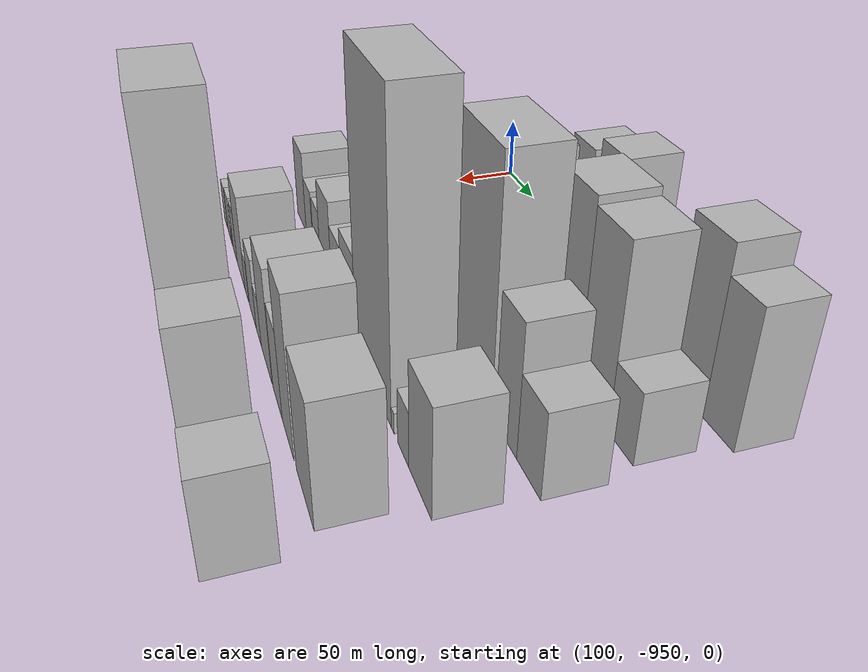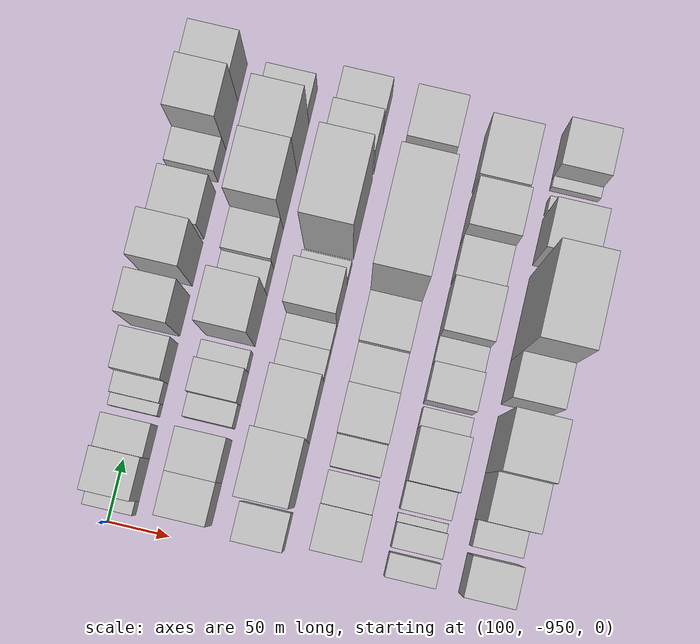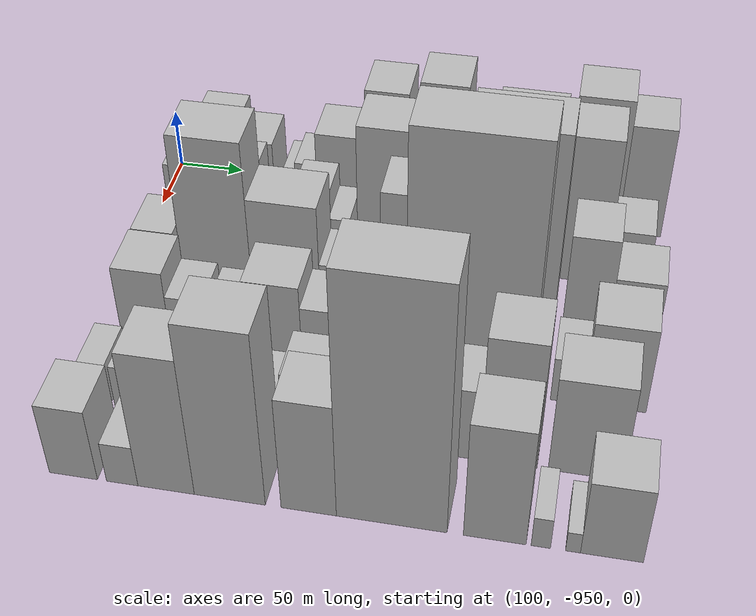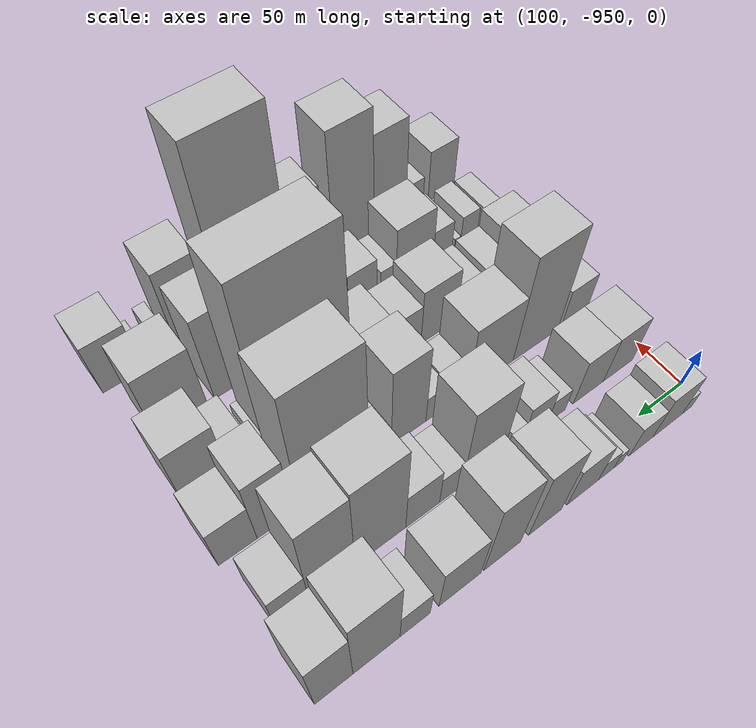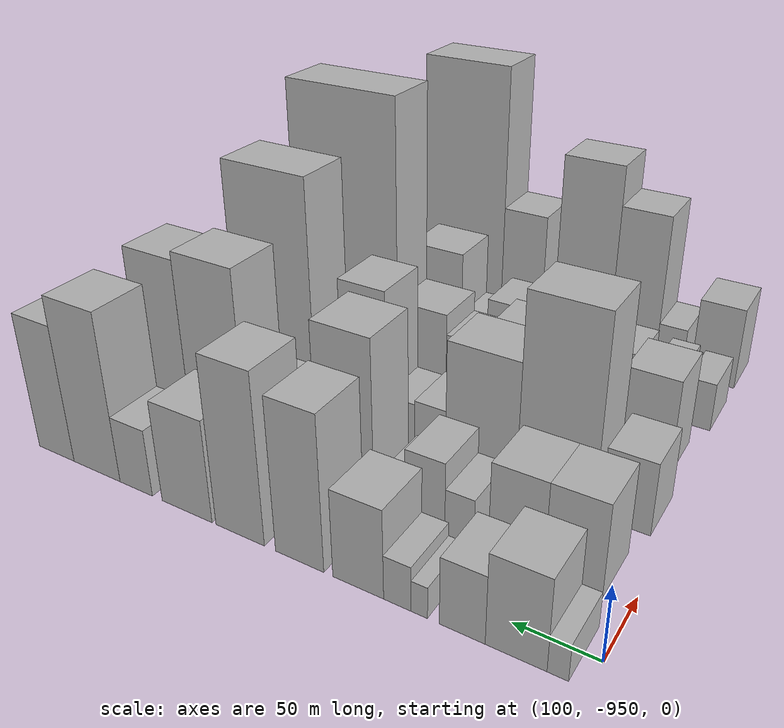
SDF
<sdf version="1.6">
 <world name="default">
  <model name="building_1">
   <static>1</static>
   <pose>100.0000 -934.3074 0 0.000000 0.000000 0.000000</pose>
   <link name="link">
    <pose>0 0 12.00 0 0 0</pose>
    <collision name="collision"><geometry><box><size>40.0000 11.3851 24.0000</size></box></geometry></collision>
    <visual name="visual">
     <cast_shadows>0</cast_shadows>
     <geometry><box><size>40.0000 11.3851 24.0000</size></box></geometry>
     <material>
      <script>
       <uri>model://HANNAS_wall/materials/scripts</uri>
       <uri>model://HANNAS_wall/materials/textures</uri>
       <name>vrc/HANNAS_wall</name>
      </script>
     </material>
    </visual>
   </link>
  </model>
  <model name="building_2">
   <static>1</static>
   <pose>100.0000 -911.6488 0 0.000000 0.000000 0.000000</pose>
   <link name="link">
    <pose>0 0 30.00 0 0 0</pose>
    <collision name="collision"><geometry><box><size>40.0000 33.9323 60.0000</size></box></geometry></collision>
    <visual name="visual">
     <cast_shadows>0</cast_shadows>
     <geometry><box><size>40.0000 33.9323 60.0000</size></box></geometry>
     <material>
      <script>
       <uri>model://HANNAS_wall/materials/scripts</uri>
       <uri>model://HANNAS_wall/materials/textures</uri>
       <name>vrc/HANNAS_wall</name>
      </script>
     </material>
    </visual>
   </link>
  </model>
  <model name="building_3">
   <static>1</static>
   <pose>100.0000 -881.3711 0 0.000000 0.000000 0.000000</pose>
   <link name="link">
    <pose>0 0 22.50 0 0 0</pose>
    <collision name="collision"><geometry><box><size>40.0000 26.6231 45.0000</size></box></geometry></collision>
    <visual name="visual">
     <cast_shadows>0</cast_shadows>
     <geometry><box><size>40.0000 26.6231 45.0000</size></box></geometry>
     <material>
      <script>
       <uri>model://HANNAS_wall/materials/scripts</uri>
       <uri>model://HANNAS_wall/materials/textures</uri>
       <name>vrc/HANNAS_wall</name>
      </script>
     </material>
    </visual>
   </link>
  </model>
  <model name="building_4">
   <static>1</static>
   <pose>100.0000 -856.0888 0 0.000000 0.000000 0.000000</pose>
   <link name="link">
    <pose>0 0 10.50 0 0 0</pose>
    <collision name="collision"><geometry><box><size>40.0000 9.9415 21.0000</size></box></geometry></collision>
    <visual name="visual">
     <cast_shadows>0</cast_shadows>
     <geometry><box><size>40.0000 9.9415 21.0000</size></box></geometry>
     <material>
      <script>
       <uri>model://HANNAS_wall/materials/scripts</uri>
       <uri>model://HANNAS_wall/materials/textures</uri>
       <name>vrc/HANNAS_wall</name>
      </script>
     </material>
    </visual>
   </link>
  </model>
  <model name="building_5">
   <static>1</static>
   <pose>100.0000 -842.5951 0 0.000000 0.000000 0.000000</pose>
   <link name="link">
    <pose>0 0 15.00 0 0 0</pose>
    <collision name="collision"><geometry><box><size>40.0000 17.0459 30.0000</size></box></geometry></collision>
    <visual name="visual">
     <cast_shadows>0</cast_shadows>
     <geometry><box><size>40.0000 17.0459 30.0000</size></box></geometry>
     <material>
      <script>
       <uri>model://HANNAS_wall/materials/scripts</uri>
       <uri>model://HANNAS_wall/materials/textures</uri>
       <name>vrc/HANNAS_wall</name>
      </script>
     </material>
    </visual>
   </link>
  </model>
  <model name="building_6">
   <static>1</static>
   <pose>100.0000 -817.6203 0 0.000000 0.000000 0.000000</pose>
   <link name="link">
    <pose>0 0 30.00 0 0 0</pose>
    <collision name="collision"><geometry><box><size>40.0000 32.9037 60.0000</size></box></geometry></collision>
    <visual name="visual">
     <cast_shadows>0</cast_shadows>
     <geometry><box><size>40.0000 32.9037 60.0000</size></box></geometry>
     <material>
      <script>
       <uri>model://HANNAS_wall/materials/scripts</uri>
       <uri>model://HANNAS_wall/materials/textures</uri>
       <name>vrc/HANNAS_wall</name>
      </script>
     </material>
    </visual>
   </link>
  </model>
  <model name="building_7">
   <static>1</static>
   <pose>100.0000 -778.5018 0 0.000000 0.000000 0.000000</pose>
   <link name="link">
    <pose>0 0 52.50 0 0 0</pose>
    <collision name="collision"><geometry><box><size>40.0000 33.3333 105.0000</size></box></geometry></collision>
    <visual name="visual">
     <cast_shadows>0</cast_shadows>
     <geometry><box><size>40.0000 33.3333 105.0000</size></box></geometry>
     <material>
      <script>
       <uri>model://HANNAS_wall/materials/scripts</uri>
       <uri>model://HANNAS_wall/materials/textures</uri>
       <name>vrc/HANNAS_wall</name>
      </script>
     </material>
    </visual>
   </link>
  </model>
  <model name="building_8">
   <static>1</static>
   <pose>100.0000 -735.9256 0 0.000000 0.000000 0.000000</pose>
   <link name="link">
    <pose>0 0 58.50 0 0 0</pose>
    <collision name="collision"><geometry><box><size>40.0000 35.8192 117.0000</size></box></geometry></collision>
    <visual name="visual">
     <cast_shadows>0</cast_shadows>
     <geometry><box><size>40.0000 35.8192 117.0000</size></box></geometry>
     <material>
      <script>
       <uri>model://HANNAS_wall/materials/scripts</uri>
       <uri>model://HANNAS_wall/materials/textures</uri>
       <name>vrc/HANNAS_wall</name>
      </script>
     </material>
    </visual>
   </link>
  </model>
  <model name="building_9">
   <static>1</static>
   <pose>100.0000 -695.3884 0 0.000000 0.000000 0.000000</pose>
   <link name="link">
    <pose>0 0 36.00 0 0 0</pose>
    <collision name="collision"><geometry><box><size>40.0000 39.2552 72.0000</size></box></geometry></collision>
    <visual name="visual">
     <cast_shadows>0</cast_shadows>
     <geometry><box><size>40.0000 39.2552 72.0000</size></box></geometry>
     <material>
      <script>
       <uri>model://HANNAS_wall/materials/scripts</uri>
       <uri>model://HANNAS_wall/materials/textures</uri>
       <name>vrc/HANNAS_wall</name>
      </script>
     </material>
    </visual>
   </link>
  </model>
  <model name="building_10">
   <static>1</static>
   <pose>100.0000 -654.2345 0 0.000000 0.000000 0.000000</pose>
   <link name="link">
    <pose>0 0 24.00 0 0 0</pose>
    <collision name="collision"><geometry><box><size>40.0000 27.0526 48.0000</size></box></geometry></collision>
    <visual name="visual">
     <cast_shadows>0</cast_shadows>
     <geometry><box><size>40.0000 27.0526 48.0000</size></box></geometry>
     <material>
      <script>
       <uri>model://HANNAS_wall/materials/scripts</uri>
       <uri>model://HANNAS_wall/materials/textures</uri>
       <name>vrc/HANNAS_wall</name>
      </script>
     </material>
    </visual>
   </link>
  </model>
  <model name="building_11">
   <static>1</static>
   <pose>100.0000 -620.4603 0 0.000000 0.000000 0.000000</pose>
   <link name="link">
    <pose>0 0 60.00 0 0 0</pose>
    <collision name="collision"><geometry><box><size>40.0000 40.4957 120.0000</size></box></geometry></collision>
    <visual name="visual">
     <cast_shadows>0</cast_shadows>
     <geometry><box><size>40.0000 40.4957 120.0000</size></box></geometry>
     <material>
      <script>
       <uri>model://HANNAS_wall/materials/scripts</uri>
       <uri>model://HANNAS_wall/materials/textures</uri>
       <name>vrc/HANNAS_wall</name>
      </script>
     </material>
    </visual>
   </link>
  </model>
  <model name="building_12">
   <static>1</static>
   <pose>100.0000 -584.1987 0 0.000000 0.000000 0.000000</pose>
   <link name="link">
    <pose>0 0 49.50 0 0 0</pose>
    <collision name="collision"><geometry><box><size>40.0000 32.0277 99.0000</size></box></geometry></collision>
    <visual name="visual">
     <cast_shadows>0</cast_shadows>
     <geometry><box><size>40.0000 32.0277 99.0000</size></box></geometry>
     <material>
      <script>
       <uri>model://HANNAS_wall/materials/scripts</uri>
       <uri>model://HANNAS_wall/materials/textures</uri>
       <name>vrc/HANNAS_wall</name>
      </script>
     </material>
    </visual>
   </link>
  </model>
  <model name="building_53">
   <static>1</static>
   <pose>160.0000 -916.9654 0 0.000000 0.000000 0.000000</pose>
   <link name="link">
    <pose>0 0 31.50 0 0 0</pose>
    <collision name="collision"><geometry><box><size>40.0000 34.0693 63.0000</size></box></geometry></collision>
    <visual name="visual">
     <cast_shadows>0</cast_shadows>
     <geometry><box><size>40.0000 34.0693 63.0000</size></box></geometry>
     <material>
      <script>
       <uri>model://HANNAS_wall/materials/scripts</uri>
       <uri>model://HANNAS_wall/materials/textures</uri>
       <name>vrc/HANNAS_wall</name>
      </script>
     </material>
    </visual>
   </link>
  </model>
  <model name="building_54">
   <static>1</static>
   <pose>160.0000 -882.7774 0 0.000000 0.000000 0.000000</pose>
   <link name="link">
    <pose>0 0 31.50 0 0 0</pose>
    <collision name="collision"><geometry><box><size>40.0000 34.3065 63.0000</size></box></geometry></collision>
    <visual name="visual">
     <cast_shadows>0</cast_shadows>
     <geometry><box><size>40.0000 34.3065 63.0000</size></box></geometry>
     <material>
      <script>
       <uri>model://HANNAS_wall/materials/scripts</uri>
       <uri>model://HANNAS_wall/materials/textures</uri>
       <name>vrc/HANNAS_wall</name>
      </script>
     </material>
    </visual>
   </link>
  </model>
  <model name="building_55">
   <static>1</static>
   <pose>160.0000 -847.1455 0 0.000000 0.000000 0.000000</pose>
   <link name="link">
    <pose>0 0 16.50 0 0 0</pose>
    <collision name="collision"><geometry><box><size>40.0000 18.9574 33.0000</size></box></geometry></collision>
    <visual name="visual">
     <cast_shadows>0</cast_shadows>
     <geometry><box><size>40.0000 18.9574 33.0000</size></box></geometry>
     <material>
      <script>
       <uri>model://HANNAS_wall/materials/scripts</uri>
       <uri>model://HANNAS_wall/materials/textures</uri>
       <name>vrc/HANNAS_wall</name>
      </script>
     </material>
    </visual>
   </link>
  </model>
  <model name="building_56">
   <static>1</static>
   <pose>160.0000 -824.3427 0 0.000000 0.000000 0.000000</pose>
   <link name="link">
    <pose>0 0 25.50 0 0 0</pose>
    <collision name="collision"><geometry><box><size>40.0000 26.6481 51.0000</size></box></geometry></collision>
    <visual name="visual">
     <cast_shadows>0</cast_shadows>
     <geometry><box><size>40.0000 26.6481 51.0000</size></box></geometry>
     <material>
      <script>
       <uri>model://HANNAS_wall/materials/scripts</uri>
       <uri>model://HANNAS_wall/materials/textures</uri>
       <name>vrc/HANNAS_wall</name>
      </script>
     </material>
    </visual>
   </link>
  </model>
  <model name="building_57">
   <static>1</static>
   <pose>160.0000 -803.1540 0 0.000000 0.000000 0.000000</pose>
   <link name="link">
    <pose>0 0 15.00 0 0 0</pose>
    <collision name="collision"><geometry><box><size>40.0000 15.7293 30.0000</size></box></geometry></collision>
    <visual name="visual">
     <cast_shadows>0</cast_shadows>
     <geometry><box><size>40.0000 15.7293 30.0000</size></box></geometry>
     <material>
      <script>
       <uri>model://HANNAS_wall/materials/scripts</uri>
       <uri>model://HANNAS_wall/materials/textures</uri>
       <name>vrc/HANNAS_wall</name>
      </script>
     </material>
    </visual>
   </link>
  </model>
  <model name="building_58">
   <static>1</static>
   <pose>160.0000 -768.6981 0 0.000000 0.000000 0.000000</pose>
   <link name="link">
    <pose>0 0 58.50 0 0 0</pose>
    <collision name="collision"><geometry><box><size>40.0000 41.1826 117.0000</size></box></geometry></collision>
    <visual name="visual">
     <cast_shadows>0</cast_shadows>
     <geometry><box><size>40.0000 41.1826 117.0000</size></box></geometry>
     <material>
      <script>
       <uri>model://HANNAS_wall/materials/scripts</uri>
       <uri>model://HANNAS_wall/materials/textures</uri>
       <name>vrc/HANNAS_wall</name>
      </script>
     </material>
    </visual>
   </link>
  </model>
  <model name="building_59">
   <static>1</static>
   <pose>160.0000 -736.7922 0 0.000000 0.000000 0.000000</pose>
   <link name="link">
    <pose>0 0 21.00 0 0 0</pose>
    <collision name="collision"><geometry><box><size>40.0000 22.6292 42.0000</size></box></geometry></collision>
    <visual name="visual">
     <cast_shadows>0</cast_shadows>
     <geometry><box><size>40.0000 22.6292 42.0000</size></box></geometry>
     <material>
      <script>
       <uri>model://HANNAS_wall/materials/scripts</uri>
       <uri>model://HANNAS_wall/materials/textures</uri>
       <name>vrc/HANNAS_wall</name>
      </script>
     </material>
    </visual>
   </link>
  </model>
  <model name="building_60">
   <static>1</static>
   <pose>160.0000 -709.2363 0 0.000000 0.000000 0.000000</pose>
   <link name="link">
    <pose>0 0 28.50 0 0 0</pose>
    <collision name="collision"><geometry><box><size>40.0000 32.4824 57.0000</size></box></geometry></collision>
    <visual name="visual">
     <cast_shadows>0</cast_shadows>
     <geometry><box><size>40.0000 32.4824 57.0000</size></box></geometry>
     <material>
      <script>
       <uri>model://HANNAS_wall/materials/scripts</uri>
       <uri>model://HANNAS_wall/materials/textures</uri>
       <name>vrc/HANNAS_wall</name>
      </script>
     </material>
    </visual>
   </link>
  </model>
  <model name="building_61">
   <static>1</static>
   <pose>160.0000 -669.5841 0 0.000000 0.000000 0.000000</pose>
   <link name="link">
    <pose>0 0 67.50 0 0 0</pose>
    <collision name="collision"><geometry><box><size>40.0000 46.8219 135.0000</size></box></geometry></collision>
    <visual name="visual">
     <cast_shadows>0</cast_shadows>
     <geometry><box><size>40.0000 46.8219 135.0000</size></box></geometry>
     <material>
      <script>
       <uri>model://HANNAS_wall/materials/scripts</uri>
       <uri>model://HANNAS_wall/materials/textures</uri>
       <name>vrc/HANNAS_wall</name>
      </script>
     </material>
    </visual>
   </link>
  </model>
  <model name="building_62">
   <static>1</static>
   <pose>160.0000 -625.7446 0 0.000000 0.000000 0.000000</pose>
   <link name="link">
    <pose>0 0 64.50 0 0 0</pose>
    <collision name="collision"><geometry><box><size>40.0000 40.8571 129.0000</size></box></geometry></collision>
    <visual name="visual">
     <cast_shadows>0</cast_shadows>
     <geometry><box><size>40.0000 40.8571 129.0000</size></box></geometry>
     <material>
      <script>
       <uri>model://HANNAS_wall/materials/scripts</uri>
       <uri>model://HANNAS_wall/materials/textures</uri>
       <name>vrc/HANNAS_wall</name>
      </script>
     </material>
    </visual>
   </link>
  </model>
  <model name="building_63">
   <static>1</static>
   <pose>160.0000 -590.4081 0 0.000000 0.000000 0.000000</pose>
   <link name="link">
    <pose>0 0 25.50 0 0 0</pose>
    <collision name="collision"><geometry><box><size>40.0000 29.8159 51.0000</size></box></geometry></collision>
    <visual name="visual">
     <cast_shadows>0</cast_shadows>
     <geometry><box><size>40.0000 29.8159 51.0000</size></box></geometry>
     <material>
      <script>
       <uri>model://HANNAS_wall/materials/scripts</uri>
       <uri>model://HANNAS_wall/materials/textures</uri>
       <name>vrc/HANNAS_wall</name>
      </script>
     </material>
    </visual>
   </link>
  </model>
  <model name="building_107">
   <static>1</static>
   <pose>220.0000 -924.7312 0 0.000000 0.000000 0.000000</pose>
   <link name="link">
    <pose>0 0 25.50 0 0 0</pose>
    <collision name="collision"><geometry><box><size>40.0000 30.5375 51.0000</size></box></geometry></collision>
    <visual name="visual">
     <cast_shadows>0</cast_shadows>
     <geometry><box><size>40.0000 30.5375 51.0000</size></box></geometry>
     <material>
      <script>
       <uri>model://HANNAS_wall/materials/scripts</uri>
       <uri>model://HANNAS_wall/materials/textures</uri>
       <name>vrc/HANNAS_wall</name>
      </script>
     </material>
    </visual>
   </link>
  </model>
  <model name="building_108">
   <static>1</static>
   <pose>220.0000 -879.8817 0 0.000000 0.000000 0.000000</pose>
   <link name="link">
    <pose>0 0 69.00 0 0 0</pose>
    <collision name="collision"><geometry><box><size>40.0000 51.1616 138.0000</size></box></geometry></collision>
    <visual name="visual">
     <cast_shadows>0</cast_shadows>
     <geometry><box><size>40.0000 51.1616 138.0000</size></box></geometry>
     <material>
      <script>
       <uri>model://HANNAS_wall/materials/scripts</uri>
       <uri>model://HANNAS_wall/materials/textures</uri>
       <name>vrc/HANNAS_wall</name>
      </script>
     </material>
    </visual>
   </link>
  </model>
  <model name="building_109">
   <static>1</static>
   <pose>220.0000 -829.4385 0 0.000000 0.000000 0.000000</pose>
   <link name="link">
    <pose>0 0 45.00 0 0 0</pose>
    <collision name="collision"><geometry><box><size>40.0000 49.7247 90.0000</size></box></geometry></collision>
    <visual name="visual">
     <cast_shadows>0</cast_shadows>
     <geometry><box><size>40.0000 49.7247 90.0000</size></box></geometry>
     <material>
      <script>
       <uri>model://HANNAS_wall/materials/scripts</uri>
       <uri>model://HANNAS_wall/materials/textures</uri>
       <name>vrc/HANNAS_wall</name>
      </script>
     </material>
    </visual>
   </link>
  </model>
  <model name="building_110">
   <static>1</static>
   <pose>220.0000 -793.1426 0 0.000000 0.000000 0.000000</pose>
   <link name="link">
    <pose>0 0 19.50 0 0 0</pose>
    <collision name="collision"><geometry><box><size>40.0000 22.8672 39.0000</size></box></geometry></collision>
    <visual name="visual">
     <cast_shadows>0</cast_shadows>
     <geometry><box><size>40.0000 22.8672 39.0000</size></box></geometry>
     <material>
      <script>
       <uri>model://HANNAS_wall/materials/scripts</uri>
       <uri>model://HANNAS_wall/materials/textures</uri>
       <name>vrc/HANNAS_wall</name>
      </script>
     </material>
    </visual>
   </link>
  </model>
  <model name="building_111">
   <static>1</static>
   <pose>220.0000 -771.1184 0 0.000000 0.000000 0.000000</pose>
   <link name="link">
    <pose>0 0 18.00 0 0 0</pose>
    <collision name="collision"><geometry><box><size>40.0000 21.1812 36.0000</size></box></geometry></collision>
    <visual name="visual">
     <cast_shadows>0</cast_shadows>
     <geometry><box><size>40.0000 21.1812 36.0000</size></box></geometry>
     <material>
      <script>
       <uri>model://HANNAS_wall/materials/scripts</uri>
       <uri>model://HANNAS_wall/materials/textures</uri>
       <name>vrc/HANNAS_wall</name>
      </script>
     </material>
    </visual>
   </link>
  </model>
  <model name="building_112">
   <static>1</static>
   <pose>220.0000 -743.1438 0 0.000000 0.000000 0.000000</pose>
   <link name="link">
    <pose>0 0 55.50 0 0 0</pose>
    <collision name="collision"><geometry><box><size>40.0000 34.7679 111.0000</size></box></geometry></collision>
    <visual name="visual">
     <cast_shadows>0</cast_shadows>
     <geometry><box><size>40.0000 34.7679 111.0000</size></box></geometry>
     <material>
      <script>
       <uri>model://HANNAS_wall/materials/scripts</uri>
       <uri>model://HANNAS_wall/materials/textures</uri>
       <name>vrc/HANNAS_wall</name>
      </script>
     </material>
    </visual>
   </link>
  </model>
  <model name="building_113">
   <static>1</static>
   <pose>220.0000 -717.3620 0 0.000000 0.000000 0.000000</pose>
   <link name="link">
    <pose>0 0 15.00 0 0 0</pose>
    <collision name="collision"><geometry><box><size>40.0000 16.7956 30.0000</size></box></geometry></collision>
    <visual name="visual">
     <cast_shadows>0</cast_shadows>
     <geometry><box><size>40.0000 16.7956 30.0000</size></box></geometry>
     <material>
      <script>
       <uri>model://HANNAS_wall/materials/scripts</uri>
       <uri>model://HANNAS_wall/materials/textures</uri>
       <name>vrc/HANNAS_wall</name>
      </script>
     </material>
    </visual>
   </link>
  </model>
  <model name="building_114">
   <static>1</static>
   <pose>220.0000 -671.2711 0 0.000000 0.000000 0.000000</pose>
   <link name="link">
    <pose>0 0 87.00 0 0 0</pose>
    <collision name="collision"><geometry><box><size>40.0000 65.3863 174.0000</size></box></geometry></collision>
    <visual name="visual">
     <cast_shadows>0</cast_shadows>
     <geometry><box><size>40.0000 65.3863 174.0000</size></box></geometry>
     <material>
      <script>
       <uri>model://HANNAS_wall/materials/scripts</uri>
       <uri>model://HANNAS_wall/materials/textures</uri>
       <name>vrc/HANNAS_wall</name>
      </script>
     </material>
    </visual>
   </link>
  </model>
  <model name="building_115">
   <static>1</static>
   <pose>220.0000 -616.4204 0 0.000000 0.000000 0.000000</pose>
   <link name="link">
    <pose>0 0 46.50 0 0 0</pose>
    <collision name="collision"><geometry><box><size>40.0000 32.3150 93.0000</size></box></geometry></collision>
    <visual name="visual">
     <cast_shadows>0</cast_shadows>
     <geometry><box><size>40.0000 32.3150 93.0000</size></box></geometry>
     <material>
      <script>
       <uri>model://HANNAS_wall/materials/scripts</uri>
       <uri>model://HANNAS_wall/materials/textures</uri>
       <name>vrc/HANNAS_wall</name>
      </script>
     </material>
    </visual>
   </link>
  </model>
  <model name="building_116">
   <static>1</static>
   <pose>220.0000 -583.4428 0 0.000000 0.000000 0.000000</pose>
   <link name="link">
    <pose>0 0 30.00 0 0 0</pose>
    <collision name="collision"><geometry><box><size>40.0000 33.6403 60.0000</size></box></geometry></collision>
    <visual name="visual">
     <cast_shadows>0</cast_shadows>
     <geometry><box><size>40.0000 33.6403 60.0000</size></box></geometry>
     <material>
      <script>
       <uri>model://HANNAS_wall/materials/scripts</uri>
       <uri>model://HANNAS_wall/materials/textures</uri>
       <name>vrc/HANNAS_wall</name>
      </script>
     </material>
    </visual>
   </link>
  </model>
  <model name="building_161">
   <static>1</static>
   <pose>280.0000 -914.3825 0 0.000000 0.000000 0.000000</pose>
   <link name="link">
    <pose>0 0 34.50 0 0 0</pose>
    <collision name="collision"><geometry><box><size>40.0000 35.2350 69.0000</size></box></geometry></collision>
    <visual name="visual">
     <cast_shadows>0</cast_shadows>
     <geometry><box><size>40.0000 35.2350 69.0000</size></box></geometry>
     <material>
      <script>
       <uri>model://HANNAS_wall/materials/scripts</uri>
       <uri>model://HANNAS_wall/materials/textures</uri>
       <name>vrc/HANNAS_wall</name>
      </script>
     </material>
    </visual>
   </link>
  </model>
  <model name="building_162">
   <static>1</static>
   <pose>280.0000 -883.7900 0 0.000000 0.000000 0.000000</pose>
   <link name="link">
    <pose>0 0 24.00 0 0 0</pose>
    <collision name="collision"><geometry><box><size>40.0000 25.9499 48.0000</size></box></geometry></collision>
    <visual name="visual">
     <cast_shadows>0</cast_shadows>
     <geometry><box><size>40.0000 25.9499 48.0000</size></box></geometry>
     <material>
      <script>
       <uri>model://HANNAS_wall/materials/scripts</uri>
       <uri>model://HANNAS_wall/materials/textures</uri>
       <name>vrc/HANNAS_wall</name>
      </script>
     </material>
    </visual>
   </link>
  </model>
  <model name="building_163">
   <static>1</static>
   <pose>280.0000 -855.1792 0 0.000000 0.000000 0.000000</pose>
   <link name="link">
    <pose>0 0 22.50 0 0 0</pose>
    <collision name="collision"><geometry><box><size>40.0000 25.2717 45.0000</size></box></geometry></collision>
    <visual name="visual">
     <cast_shadows>0</cast_shadows>
     <geometry><box><size>40.0000 25.2717 45.0000</size></box></geometry>
     <material>
      <script>
       <uri>model://HANNAS_wall/materials/scripts</uri>
       <uri>model://HANNAS_wall/materials/textures</uri>
       <name>vrc/HANNAS_wall</name>
      </script>
     </material>
    </visual>
   </link>
  </model>
  <model name="building_164">
   <static>1</static>
   <pose>280.0000 -823.0845 0 0.000000 0.000000 0.000000</pose>
   <link name="link">
    <pose>0 0 36.00 0 0 0</pose>
    <collision name="collision"><geometry><box><size>40.0000 38.9178 72.0000</size></box></geometry></collision>
    <visual name="visual">
     <cast_shadows>0</cast_shadows>
     <geometry><box><size>40.0000 38.9178 72.0000</size></box></geometry>
     <material>
      <script>
       <uri>model://HANNAS_wall/materials/scripts</uri>
       <uri>model://HANNAS_wall/materials/textures</uri>
       <name>vrc/HANNAS_wall</name>
      </script>
     </material>
    </visual>
   </link>
  </model>
  <model name="building_165">
   <static>1</static>
   <pose>280.0000 -787.4795 0 0.000000 0.000000 0.000000</pose>
   <link name="link">
    <pose>0 0 27.00 0 0 0</pose>
    <collision name="collision"><geometry><box><size>40.0000 32.2922 54.0000</size></box></geometry></collision>
    <visual name="visual">
     <cast_shadows>0</cast_shadows>
     <geometry><box><size>40.0000 32.2922 54.0000</size></box></geometry>
     <material>
      <script>
       <uri>model://HANNAS_wall/materials/scripts</uri>
       <uri>model://HANNAS_wall/materials/textures</uri>
       <name>vrc/HANNAS_wall</name>
      </script>
     </material>
    </visual>
   </link>
  </model>
  <model name="building_166">
   <static>1</static>
   <pose>280.0000 -751.8260 0 0.000000 0.000000 0.000000</pose>
   <link name="link">
    <pose>0 0 34.50 0 0 0</pose>
    <collision name="collision"><geometry><box><size>40.0000 39.0148 69.0000</size></box></geometry></collision>
    <visual name="visual">
     <cast_shadows>0</cast_shadows>
     <geometry><box><size>40.0000 39.0148 69.0000</size></box></geometry>
     <material>
      <script>
       <uri>model://HANNAS_wall/materials/scripts</uri>
       <uri>model://HANNAS_wall/materials/textures</uri>
       <name>vrc/HANNAS_wall</name>
      </script>
     </material>
    </visual>
   </link>
  </model>
  <model name="building_167">
   <static>1</static>
   <pose>280.0000 -689.8216 0 0.000000 0.000000 0.000000</pose>
   <link name="link">
    <pose>0 0 106.50 0 0 0</pose>
    <collision name="collision"><geometry><box><size>40.0000 84.9939 213.0000</size></box></geometry></collision>
    <visual name="visual">
     <cast_shadows>0</cast_shadows>
     <geometry><box><size>40.0000 84.9939 213.0000</size></box></geometry>
     <material>
      <script>
       <uri>model://HANNAS_wall/materials/scripts</uri>
       <uri>model://HANNAS_wall/materials/textures</uri>
       <name>vrc/HANNAS_wall</name>
      </script>
     </material>
    </visual>
   </link>
  </model>
  <model name="building_168">
   <static>1</static>
   <pose>280.0000 -644.2153 0 0.000000 0.000000 0.000000</pose>
   <link name="link">
    <pose>0 0 7.50 0 0 0</pose>
    <collision name="collision"><geometry><box><size>40.0000 6.2187 15.0000</size></box></geometry></collision>
    <visual name="visual">
     <cast_shadows>0</cast_shadows>
     <geometry><box><size>40.0000 6.2187 15.0000</size></box></geometry>
     <material>
      <script>
       <uri>model://HANNAS_wall/materials/scripts</uri>
       <uri>model://HANNAS_wall/materials/textures</uri>
       <name>vrc/HANNAS_wall</name>
      </script>
     </material>
    </visual>
   </link>
  </model>
  <model name="building_169">
   <static>1</static>
   <pose>280.0000 -622.9805 0 0.000000 0.000000 0.000000</pose>
   <link name="link">
    <pose>0 0 19.50 0 0 0</pose>
    <collision name="collision"><geometry><box><size>40.0000 22.2508 39.0000</size></box></geometry></collision>
    <visual name="visual">
     <cast_shadows>0</cast_shadows>
     <geometry><box><size>40.0000 22.2508 39.0000</size></box></geometry>
     <material>
      <script>
       <uri>model://HANNAS_wall/materials/scripts</uri>
       <uri>model://HANNAS_wall/materials/textures</uri>
       <name>vrc/HANNAS_wall</name>
      </script>
     </material>
    </visual>
   </link>
  </model>
  <model name="building_170">
   <static>1</static>
   <pose>280.0000 -591.3242 0 0.000000 0.000000 0.000000</pose>
   <link name="link">
    <pose>0 0 37.50 0 0 0</pose>
    <collision name="collision"><geometry><box><size>40.0000 41.0618 75.0000</size></box></geometry></collision>
    <visual name="visual">
     <cast_shadows>0</cast_shadows>
     <geometry><box><size>40.0000 41.0618 75.0000</size></box></geometry>
     <material>
      <script>
       <uri>model://HANNAS_wall/materials/scripts</uri>
       <uri>model://HANNAS_wall/materials/textures</uri>
       <name>vrc/HANNAS_wall</name>
      </script>
     </material>
    </visual>
   </link>
  </model>
  <model name="building_217">
   <static>1</static>
   <pose>340.0000 -930.4887 0 0.000000 0.000000 0.000000</pose>
   <link name="link">
    <pose>0 0 18.00 0 0 0</pose>
    <collision name="collision"><geometry><box><size>40.0000 19.0226 36.0000</size></box></geometry></collision>
    <visual name="visual">
     <cast_shadows>0</cast_shadows>
     <geometry><box><size>40.0000 19.0226 36.0000</size></box></geometry>
     <material>
      <script>
       <uri>model://HANNAS_wall/materials/scripts</uri>
       <uri>model://HANNAS_wall/materials/textures</uri>
       <name>vrc/HANNAS_wall</name>
      </script>
     </material>
    </visual>
   </link>
  </model>
  <model name="building_218">
   <static>1</static>
   <pose>340.0000 -907.1337 0 0.000000 0.000000 0.000000</pose>
   <link name="link">
    <pose>0 0 19.50 0 0 0</pose>
    <collision name="collision"><geometry><box><size>40.0000 19.6874 39.0000</size></box></geometry></collision>
    <visual name="visual">
     <cast_shadows>0</cast_shadows>
     <geometry><box><size>40.0000 19.6874 39.0000</size></box></geometry>
     <material>
      <script>
       <uri>model://HANNAS_wall/materials/scripts</uri>
       <uri>model://HANNAS_wall/materials/textures</uri>
       <name>vrc/HANNAS_wall</name>
      </script>
     </material>
    </visual>
   </link>
  </model>
  <model name="building_219">
   <static>1</static>
   <pose>340.0000 -893.7316 0 0.000000 0.000000 0.000000</pose>
   <link name="link">
    <pose>0 0 7.50 0 0 0</pose>
    <collision name="collision"><geometry><box><size>40.0000 7.1168 15.0000</size></box></geometry></collision>
    <visual name="visual">
     <cast_shadows>0</cast_shadows>
     <geometry><box><size>40.0000 7.1168 15.0000</size></box></geometry>
     <material>
      <script>
       <uri>model://HANNAS_wall/materials/scripts</uri>
       <uri>model://HANNAS_wall/materials/textures</uri>
       <name>vrc/HANNAS_wall</name>
      </script>
     </material>
    </visual>
   </link>
  </model>
  <model name="building_220">
   <static>1</static>
   <pose>340.0000 -876.2315 0 0.000000 0.000000 0.000000</pose>
   <link name="link">
    <pose>0 0 21.00 0 0 0</pose>
    <collision name="collision"><geometry><box><size>40.0000 21.8833 42.0000</size></box></geometry></collision>
    <visual name="visual">
     <cast_shadows>0</cast_shadows>
     <geometry><box><size>40.0000 21.8833 42.0000</size></box></geometry>
     <material>
      <script>
       <uri>model://HANNAS_wall/materials/scripts</uri>
       <uri>model://HANNAS_wall/materials/textures</uri>
       <name>vrc/HANNAS_wall</name>
      </script>
     </material>
    </visual>
   </link>
  </model>
  <model name="building_221">
   <static>1</static>
   <pose>340.0000 -844.4123 0 0.000000 0.000000 0.000000</pose>
   <link name="link">
    <pose>0 0 37.50 0 0 0</pose>
    <collision name="collision"><geometry><box><size>40.0000 41.7550 75.0000</size></box></geometry></collision>
    <visual name="visual">
     <cast_shadows>0</cast_shadows>
     <geometry><box><size>40.0000 41.7550 75.0000</size></box></geometry>
     <material>
      <script>
       <uri>model://HANNAS_wall/materials/scripts</uri>
       <uri>model://HANNAS_wall/materials/textures</uri>
       <name>vrc/HANNAS_wall</name>
      </script>
     </material>
    </visual>
   </link>
  </model>
  <model name="building_222">
   <static>1</static>
   <pose>340.0000 -815.1343 0 0.000000 0.000000 0.000000</pose>
   <link name="link">
    <pose>0 0 16.50 0 0 0</pose>
    <collision name="collision"><geometry><box><size>40.0000 16.8010 33.0000</size></box></geometry></collision>
    <visual name="visual">
     <cast_shadows>0</cast_shadows>
     <geometry><box><size>40.0000 16.8010 33.0000</size></box></geometry>
     <material>
      <script>
       <uri>model://HANNAS_wall/materials/scripts</uri>
       <uri>model://HANNAS_wall/materials/textures</uri>
       <name>vrc/HANNAS_wall</name>
      </script>
     </material>
    </visual>
   </link>
  </model>
  <model name="building_223">
   <static>1</static>
   <pose>340.0000 -787.4586 0 0.000000 0.000000 0.000000</pose>
   <link name="link">
    <pose>0 0 27.00 0 0 0</pose>
    <collision name="collision"><geometry><box><size>40.0000 30.5504 54.0000</size></box></geometry></collision>
    <visual name="visual">
     <cast_shadows>0</cast_shadows>
     <geometry><box><size>40.0000 30.5504 54.0000</size></box></geometry>
     <material>
      <script>
       <uri>model://HANNAS_wall/materials/scripts</uri>
       <uri>model://HANNAS_wall/materials/textures</uri>
       <name>vrc/HANNAS_wall</name>
      </script>
     </material>
    </visual>
   </link>
  </model>
  <model name="building_224">
   <static>1</static>
   <pose>340.0000 -761.4592 0 0.000000 0.000000 0.000000</pose>
   <link name="link">
    <pose>0 0 18.00 0 0 0</pose>
    <collision name="collision"><geometry><box><size>40.0000 21.4483 36.0000</size></box></geometry></collision>
    <visual name="visual">
     <cast_shadows>0</cast_shadows>
     <geometry><box><size>40.0000 21.4483 36.0000</size></box></geometry>
     <material>
      <script>
       <uri>model://HANNAS_wall/materials/scripts</uri>
       <uri>model://HANNAS_wall/materials/textures</uri>
       <name>vrc/HANNAS_wall</name>
      </script>
     </material>
    </visual>
   </link>
  </model>
  <model name="building_225">
   <static>1</static>
   <pose>340.0000 -729.5925 0 0.000000 0.000000 0.000000</pose>
   <link name="link">
    <pose>0 0 42.00 0 0 0</pose>
    <collision name="collision"><geometry><box><size>40.0000 42.2851 84.0000</size></box></geometry></collision>
    <visual name="visual">
     <cast_shadows>0</cast_shadows>
     <geometry><box><size>40.0000 42.2851 84.0000</size></box></geometry>
     <material>
      <script>
       <uri>model://HANNAS_wall/materials/scripts</uri>
       <uri>model://HANNAS_wall/materials/textures</uri>
       <name>vrc/HANNAS_wall</name>
      </script>
     </material>
    </visual>
   </link>
  </model>
  <model name="building_226">
   <static>1</static>
   <pose>340.0000 -689.4788 0 0.000000 0.000000 0.000000</pose>
   <link name="link">
    <pose>0 0 31.50 0 0 0</pose>
    <collision name="collision"><geometry><box><size>40.0000 31.9424 63.0000</size></box></geometry></collision>
    <visual name="visual">
     <cast_shadows>0</cast_shadows>
     <geometry><box><size>40.0000 31.9424 63.0000</size></box></geometry>
     <material>
      <script>
       <uri>model://HANNAS_wall/materials/scripts</uri>
       <uri>model://HANNAS_wall/materials/textures</uri>
       <name>vrc/HANNAS_wall</name>
      </script>
     </material>
    </visual>
   </link>
  </model>
  <model name="building_227">
   <static>1</static>
   <pose>340.0000 -655.0912 0 0.000000 0.000000 0.000000</pose>
   <link name="link">
    <pose>0 0 55.50 0 0 0</pose>
    <collision name="collision"><geometry><box><size>40.0000 36.8327 111.0000</size></box></geometry></collision>
    <visual name="visual">
     <cast_shadows>0</cast_shadows>
     <geometry><box><size>40.0000 36.8327 111.0000</size></box></geometry>
     <material>
      <script>
       <uri>model://HANNAS_wall/materials/scripts</uri>
       <uri>model://HANNAS_wall/materials/textures</uri>
       <name>vrc/HANNAS_wall</name>
      </script>
     </material>
    </visual>
   </link>
  </model>
  <model name="building_228">
   <static>1</static>
   <pose>340.0000 -605.7480 0 0.000000 0.000000 0.000000</pose>
   <link name="link">
    <pose>0 0 42.00 0 0 0</pose>
    <collision name="collision"><geometry><box><size>40.0000 47.8537 84.0000</size></box></geometry></collision>
    <visual name="visual">
     <cast_shadows>0</cast_shadows>
     <geometry><box><size>40.0000 47.8537 84.0000</size></box></geometry>
     <material>
      <script>
       <uri>model://HANNAS_wall/materials/scripts</uri>
       <uri>model://HANNAS_wall/materials/textures</uri>
       <name>vrc/HANNAS_wall</name>
      </script>
     </material>
    </visual>
   </link>
  </model>
  <model name="building_276">
   <static>1</static>
   <pose>400.0000 -924.0854 0 0.000000 0.000000 0.000000</pose>
   <link name="link">
    <pose>0 0 31.50 0 0 0</pose>
    <collision name="collision"><geometry><box><size>40.0000 31.8293 63.0000</size></box></geometry></collision>
    <visual name="visual">
     <cast_shadows>0</cast_shadows>
     <geometry><box><size>40.0000 31.8293 63.0000</size></box></geometry>
     <material>
      <script>
       <uri>model://HANNAS_wall/materials/scripts</uri>
       <uri>model://HANNAS_wall/materials/textures</uri>
       <name>vrc/HANNAS_wall</name>
      </script>
     </material>
    </visual>
   </link>
  </model>
  <model name="building_277">
   <static>1</static>
   <pose>400.0000 -891.8265 0 0.000000 0.000000 0.000000</pose>
   <link name="link">
    <pose>0 0 18.00 0 0 0</pose>
    <collision name="collision"><geometry><box><size>40.0000 20.6885 36.0000</size></box></geometry></collision>
    <visual name="visual">
     <cast_shadows>0</cast_shadows>
     <geometry><box><size>40.0000 20.6885 36.0000</size></box></geometry>
     <material>
      <script>
       <uri>model://HANNAS_wall/materials/scripts</uri>
       <uri>model://HANNAS_wall/materials/textures</uri>
       <name>vrc/HANNAS_wall</name>
      </script>
     </material>
    </visual>
   </link>
  </model>
  <model name="building_278">
   <static>1</static>
   <pose>400.0000 -863.1305 0 0.000000 0.000000 0.000000</pose>
   <link name="link">
    <pose>0 0 60.00 0 0 0</pose>
    <collision name="collision"><geometry><box><size>40.0000 36.7036 120.0000</size></box></geometry></collision>
    <visual name="visual">
     <cast_shadows>0</cast_shadows>
     <geometry><box><size>40.0000 36.7036 120.0000</size></box></geometry>
     <material>
      <script>
       <uri>model://HANNAS_wall/materials/scripts</uri>
       <uri>model://HANNAS_wall/materials/textures</uri>
       <name>vrc/HANNAS_wall</name>
      </script>
     </material>
    </visual>
   </link>
  </model>
  <model name="building_279">
   <static>1</static>
   <pose>400.0000 -821.9582 0 0.000000 0.000000 0.000000</pose>
   <link name="link">
    <pose>0 0 75.00 0 0 0</pose>
    <collision name="collision"><geometry><box><size>40.0000 45.6410 150.0000</size></box></geometry></collision>
    <visual name="visual">
     <cast_shadows>0</cast_shadows>
     <geometry><box><size>40.0000 45.6410 150.0000</size></box></geometry>
     <material>
      <script>
       <uri>model://HANNAS_wall/materials/scripts</uri>
       <uri>model://HANNAS_wall/materials/textures</uri>
       <name>vrc/HANNAS_wall</name>
      </script>
     </material>
    </visual>
   </link>
  </model>
  <model name="building_280">
   <static>1</static>
   <pose>400.0000 -771.6382 0 0.000000 0.000000 0.000000</pose>
   <link name="link">
    <pose>0 0 49.50 0 0 0</pose>
    <collision name="collision"><geometry><box><size>40.0000 34.9990 99.0000</size></box></geometry></collision>
    <visual name="visual">
     <cast_shadows>0</cast_shadows>
     <geometry><box><size>40.0000 34.9990 99.0000</size></box></geometry>
     <material>
      <script>
       <uri>model://HANNAS_wall/materials/scripts</uri>
       <uri>model://HANNAS_wall/materials/textures</uri>
       <name>vrc/HANNAS_wall</name>
      </script>
     </material>
    </visual>
   </link>
  </model>
  <model name="building_281">
   <static>1</static>
   <pose>400.0000 -719.7267 0 0.000000 0.000000 0.000000</pose>
   <link name="link">
    <pose>0 0 103.50 0 0 0</pose>
    <collision name="collision"><geometry><box><size>40.0000 68.8241 207.0000</size></box></geometry></collision>
    <visual name="visual">
     <cast_shadows>0</cast_shadows>
     <geometry><box><size>40.0000 68.8241 207.0000</size></box></geometry>
     <material>
      <script>
       <uri>model://HANNAS_wall/materials/scripts</uri>
       <uri>model://HANNAS_wall/materials/textures</uri>
       <name>vrc/HANNAS_wall</name>
      </script>
     </material>
    </visual>
   </link>
  </model>
  <model name="building_282">
   <static>1</static>
   <pose>400.0000 -656.1777 0 0.000000 0.000000 0.000000</pose>
   <link name="link">
    <pose>0 0 51.00 0 0 0</pose>
    <collision name="collision"><geometry><box><size>40.0000 38.2737 102.0000</size></box></geometry></collision>
    <visual name="visual">
     <cast_shadows>0</cast_shadows>
     <geometry><box><size>40.0000 38.2737 102.0000</size></box></geometry>
     <material>
      <script>
       <uri>model://HANNAS_wall/materials/scripts</uri>
       <uri>model://HANNAS_wall/materials/textures</uri>
       <name>vrc/HANNAS_wall</name>
      </script>
     </material>
    </visual>
   </link>
  </model>
  <model name="building_283">
   <static>1</static>
   <pose>400.0000 -628.1609 0 0.000000 0.000000 0.000000</pose>
   <link name="link">
    <pose>0 0 13.50 0 0 0</pose>
    <collision name="collision"><geometry><box><size>40.0000 11.7599 27.0000</size></box></geometry></collision>
    <visual name="visual">
     <cast_shadows>0</cast_shadows>
     <geometry><box><size>40.0000 11.7599 27.0000</size></box></geometry>
     <material>
      <script>
       <uri>model://HANNAS_wall/materials/scripts</uri>
       <uri>model://HANNAS_wall/materials/textures</uri>
       <name>vrc/HANNAS_wall</name>
      </script>
     </material>
    </visual>
   </link>
  </model>
  <model name="building_284">
   <static>1</static>
   <pose>400.0000 -608.8047 0 0.000000 0.000000 0.000000</pose>
   <link name="link">
    <pose>0 0 9.00 0 0 0</pose>
    <collision name="collision"><geometry><box><size>40.0000 8.9525 18.0000</size></box></geometry></collision>
    <visual name="visual">
     <cast_shadows>0</cast_shadows>
     <geometry><box><size>40.0000 8.9525 18.0000</size></box></geometry>
     <material>
      <script>
       <uri>model://HANNAS_wall/materials/scripts</uri>
       <uri>model://HANNAS_wall/materials/textures</uri>
       <name>vrc/HANNAS_wall</name>
      </script>
     </material>
    </visual>
   </link>
  </model>
  <model name="building_285">
   <static>1</static>
   <pose>400.0000 -585.5545 0 0.000000 0.000000 0.000000</pose>
   <link name="link">
    <pose>0 0 33.00 0 0 0</pose>
    <collision name="collision"><geometry><box><size>40.0000 37.5479 66.0000</size></box></geometry></collision>
    <visual name="visual">
     <cast_shadows>0</cast_shadows>
     <geometry><box><size>40.0000 37.5479 66.0000</size></box></geometry>
     <material>
      <script>
       <uri>model://HANNAS_wall/materials/scripts</uri>
       <uri>model://HANNAS_wall/materials/textures</uri>
       <name>vrc/HANNAS_wall</name>
      </script>
     </material>
    </visual>
   </link>
  </model>
 </world>
</sdf>
